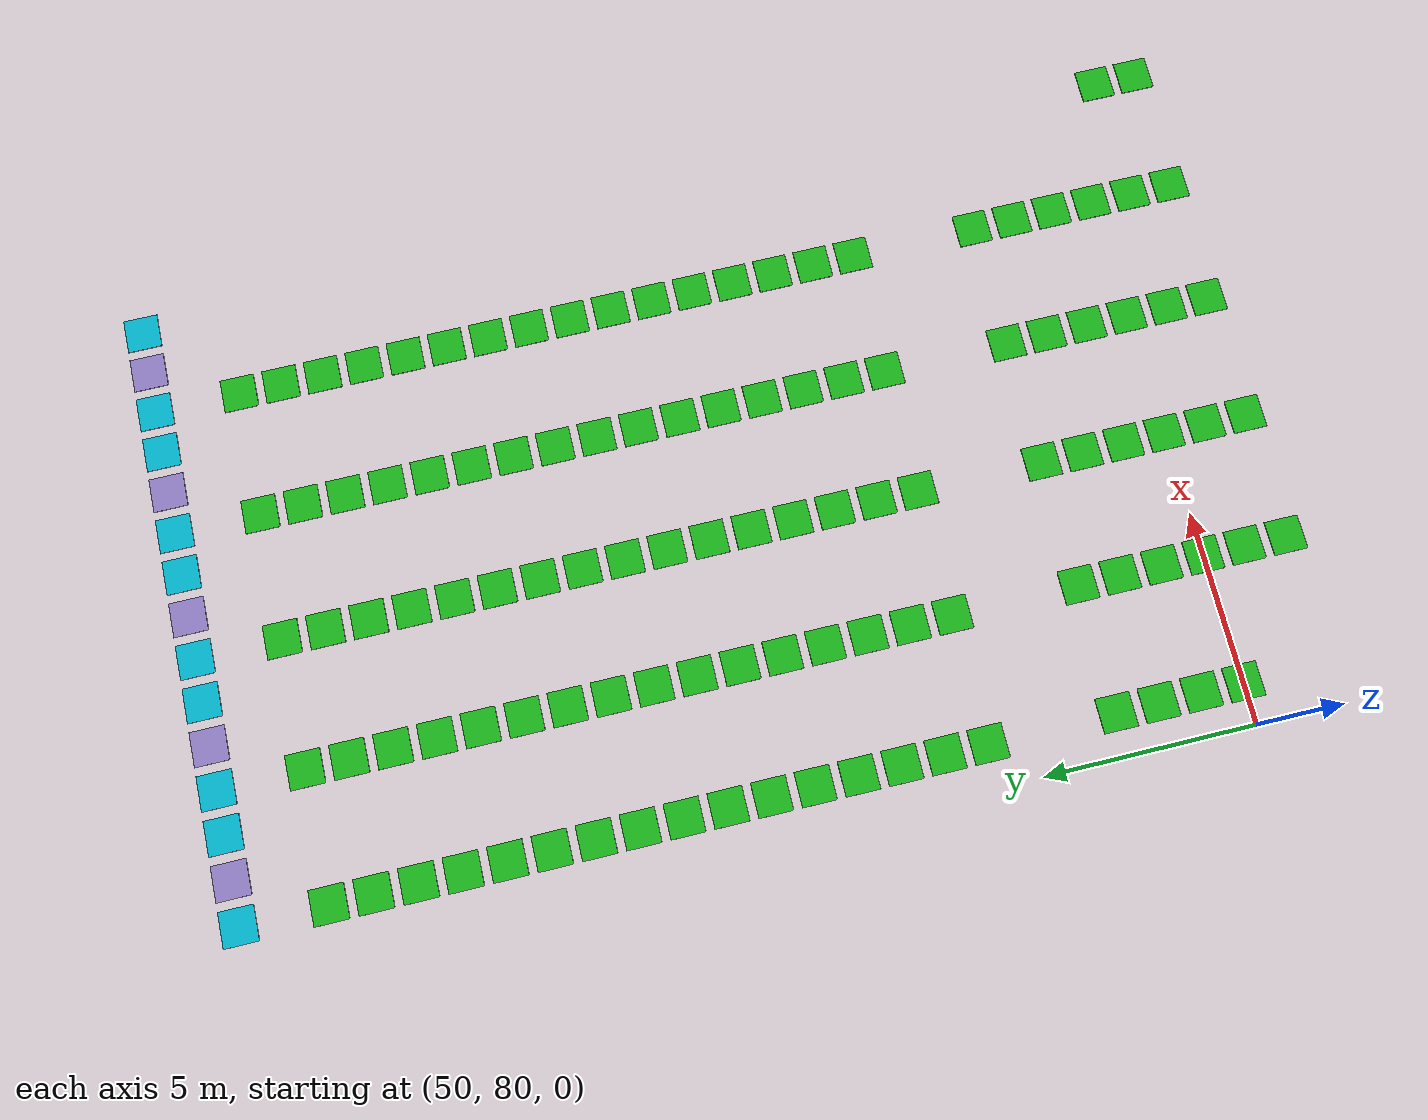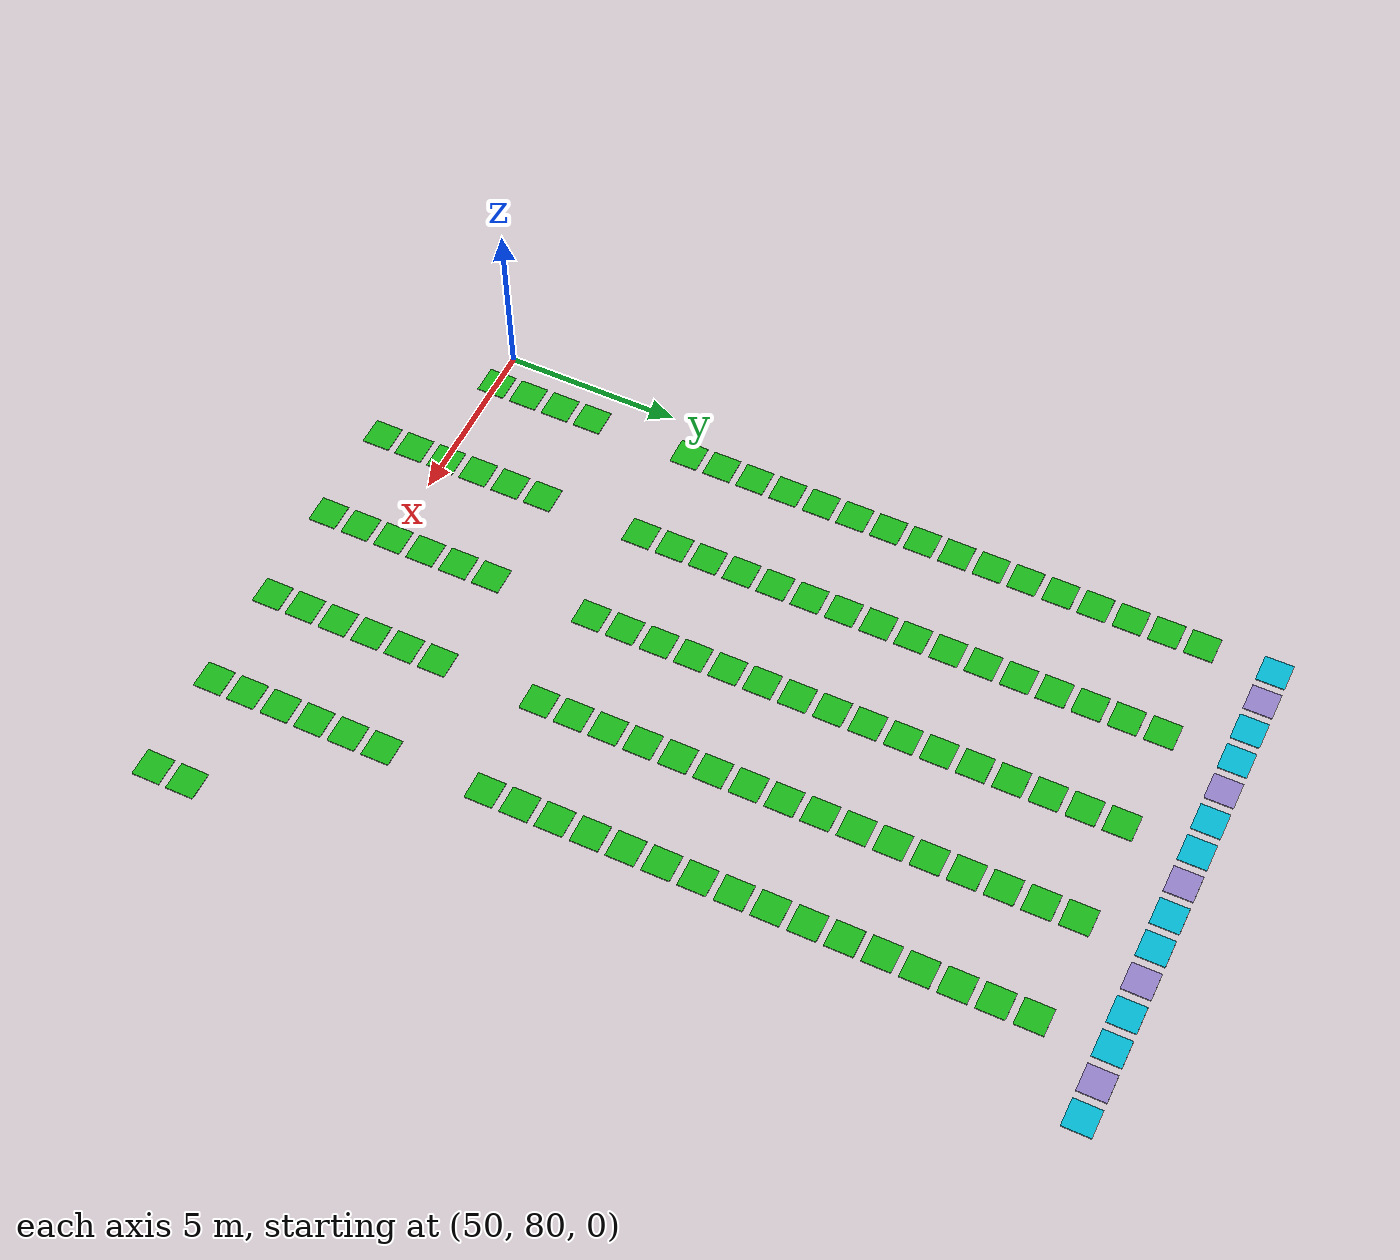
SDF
<sdf version="1.10">
 <world name="my_map">
  <model name="charging_034">
   <static>true</static>
   <pose>51.0
        103.0
        0.02
        0 0 0</pose>
   <link name="link">
    <visual name="visual">
     <geometry><box><size>0.8
                0.8
                0.02</size></box></geometry>
     <material><ambient>0.00 0.70 0.80 1</ambient><diffuse>0.00 0.70 0.80 1</diffuse></material>
    </visual>
   </link>
  </model>
  <model name="charge_queue_017">
   <static>true</static>
   <pose>52.0
        103.0
        0.02
        0 0 0</pose>
   <link name="link">
    <visual name="visual">
     <geometry><box><size>0.8
                0.8
                0.02</size></box></geometry>
     <material><ambient>0.56 0.49 0.76 1</ambient><diffuse>0.56 0.49 0.76 1</diffuse></material>
    </visual>
   </link>
  </model>
  <model name="charging_035">
   <static>true</static>
   <pose>53.0
        103.0
        0.02
        0 0 0</pose>
   <link name="link">
    <visual name="visual">
     <geometry><box><size>0.8
                0.8
                0.02</size></box></geometry>
     <material><ambient>0.00 0.70 0.80 1</ambient><diffuse>0.00 0.70 0.80 1</diffuse></material>
    </visual>
   </link>
  </model>
  <model name="charging_036">
   <static>true</static>
   <pose>54.0
        103.0
        0.02
        0 0 0</pose>
   <link name="link">
    <visual name="visual">
     <geometry><box><size>0.8
                0.8
                0.02</size></box></geometry>
     <material><ambient>0.00 0.70 0.80 1</ambient><diffuse>0.00 0.70 0.80 1</diffuse></material>
    </visual>
   </link>
  </model>
  <model name="charge_queue_018">
   <static>true</static>
   <pose>55.0
        103.0
        0.02
        0 0 0</pose>
   <link name="link">
    <visual name="visual">
     <geometry><box><size>0.8
                0.8
                0.02</size></box></geometry>
     <material><ambient>0.56 0.49 0.76 1</ambient><diffuse>0.56 0.49 0.76 1</diffuse></material>
    </visual>
   </link>
  </model>
  <model name="charging_037">
   <static>true</static>
   <pose>56.0
        103.0
        0.02
        0 0 0</pose>
   <link name="link">
    <visual name="visual">
     <geometry><box><size>0.8
                0.8
                0.02</size></box></geometry>
     <material><ambient>0.00 0.70 0.80 1</ambient><diffuse>0.00 0.70 0.80 1</diffuse></material>
    </visual>
   </link>
  </model>
  <model name="charging_038">
   <static>true</static>
   <pose>57.0
        103.0
        0.02
        0 0 0</pose>
   <link name="link">
    <visual name="visual">
     <geometry><box><size>0.8
                0.8
                0.02</size></box></geometry>
     <material><ambient>0.00 0.70 0.80 1</ambient><diffuse>0.00 0.70 0.80 1</diffuse></material>
    </visual>
   </link>
  </model>
  <model name="charge_queue_019">
   <static>true</static>
   <pose>58.0
        103.0
        0.02
        0 0 0</pose>
   <link name="link">
    <visual name="visual">
     <geometry><box><size>0.8
                0.8
                0.02</size></box></geometry>
     <material><ambient>0.56 0.49 0.76 1</ambient><diffuse>0.56 0.49 0.76 1</diffuse></material>
    </visual>
   </link>
  </model>
  <model name="charging_039">
   <static>true</static>
   <pose>59.0
        103.0
        0.02
        0 0 0</pose>
   <link name="link">
    <visual name="visual">
     <geometry><box><size>0.8
                0.8
                0.02</size></box></geometry>
     <material><ambient>0.00 0.70 0.80 1</ambient><diffuse>0.00 0.70 0.80 1</diffuse></material>
    </visual>
   </link>
  </model>
  <model name="charging_040">
   <static>true</static>
   <pose>60.0
        103.0
        0.02
        0 0 0</pose>
   <link name="link">
    <visual name="visual">
     <geometry><box><size>0.8
                0.8
                0.02</size></box></geometry>
     <material><ambient>0.00 0.70 0.80 1</ambient><diffuse>0.00 0.70 0.80 1</diffuse></material>
    </visual>
   </link>
  </model>
  <model name="charge_queue_020">
   <static>true</static>
   <pose>61.0
        103.0
        0.02
        0 0 0</pose>
   <link name="link">
    <visual name="visual">
     <geometry><box><size>0.8
                0.8
                0.02</size></box></geometry>
     <material><ambient>0.56 0.49 0.76 1</ambient><diffuse>0.56 0.49 0.76 1</diffuse></material>
    </visual>
   </link>
  </model>
  <model name="charging_041">
   <static>true</static>
   <pose>62.0
        103.0
        0.02
        0 0 0</pose>
   <link name="link">
    <visual name="visual">
     <geometry><box><size>0.8
                0.8
                0.02</size></box></geometry>
     <material><ambient>0.00 0.70 0.80 1</ambient><diffuse>0.00 0.70 0.80 1</diffuse></material>
    </visual>
   </link>
  </model>
  <model name="charging_042">
   <static>true</static>
   <pose>63.0
        103.0
        0.02
        0 0 0</pose>
   <link name="link">
    <visual name="visual">
     <geometry><box><size>0.8
                0.8
                0.02</size></box></geometry>
     <material><ambient>0.00 0.70 0.80 1</ambient><diffuse>0.00 0.70 0.80 1</diffuse></material>
    </visual>
   </link>
  </model>
  <model name="charge_queue_021">
   <static>true</static>
   <pose>64.0
        103.0
        0.02
        0 0 0</pose>
   <link name="link">
    <visual name="visual">
     <geometry><box><size>0.8
                0.8
                0.02</size></box></geometry>
     <material><ambient>0.56 0.49 0.76 1</ambient><diffuse>0.56 0.49 0.76 1</diffuse></material>
    </visual>
   </link>
  </model>
  <model name="charging_043">
   <static>true</static>
   <pose>65.0
        103.0
        0.02
        0 0 0</pose>
   <link name="link">
    <visual name="visual">
     <geometry><box><size>0.8
                0.8
                0.02</size></box></geometry>
     <material><ambient>0.00 0.70 0.80 1</ambient><diffuse>0.00 0.70 0.80 1</diffuse></material>
    </visual>
   </link>
  </model>
  <model name="shelf_017">
   <static>true</static>
   <pose>51.0
        101.0
        0.02
        0 0 0</pose>
   <link name="link">
    <visual name="visual">
     <geometry><box><size>0.8
                0.8
                0.02</size></box></geometry>
     <material><ambient>0.10 0.70 0.10 1</ambient><diffuse>0.10 0.70 0.10 1</diffuse></material>
    </visual>
   </link>
  </model>
  <model name="shelf_018">
   <static>true</static>
   <pose>54.0
        101.0
        0.02
        0 0 0</pose>
   <link name="link">
    <visual name="visual">
     <geometry><box><size>0.8
                0.8
                0.02</size></box></geometry>
     <material><ambient>0.10 0.70 0.10 1</ambient><diffuse>0.10 0.70 0.10 1</diffuse></material>
    </visual>
   </link>
  </model>
  <model name="shelf_019">
   <static>true</static>
   <pose>57.0
        101.0
        0.02
        0 0 0</pose>
   <link name="link">
    <visual name="visual">
     <geometry><box><size>0.8
                0.8
                0.02</size></box></geometry>
     <material><ambient>0.10 0.70 0.10 1</ambient><diffuse>0.10 0.70 0.10 1</diffuse></material>
    </visual>
   </link>
  </model>
  <model name="shelf_020">
   <static>true</static>
   <pose>60.0
        101.0
        0.02
        0 0 0</pose>
   <link name="link">
    <visual name="visual">
     <geometry><box><size>0.8
                0.8
                0.02</size></box></geometry>
     <material><ambient>0.10 0.70 0.10 1</ambient><diffuse>0.10 0.70 0.10 1</diffuse></material>
    </visual>
   </link>
  </model>
  <model name="shelf_021">
   <static>true</static>
   <pose>63.0
        101.0
        0.02
        0 0 0</pose>
   <link name="link">
    <visual name="visual">
     <geometry><box><size>0.8
                0.8
                0.02</size></box></geometry>
     <material><ambient>0.10 0.70 0.10 1</ambient><diffuse>0.10 0.70 0.10 1</diffuse></material>
    </visual>
   </link>
  </model>
  <model name="shelf_042">
   <static>true</static>
   <pose>51.0
        100.0
        0.02
        0 0 0</pose>
   <link name="link">
    <visual name="visual">
     <geometry><box><size>0.8
                0.8
                0.02</size></box></geometry>
     <material><ambient>0.10 0.70 0.10 1</ambient><diffuse>0.10 0.70 0.10 1</diffuse></material>
    </visual>
   </link>
  </model>
  <model name="shelf_043">
   <static>true</static>
   <pose>54.0
        100.0
        0.02
        0 0 0</pose>
   <link name="link">
    <visual name="visual">
     <geometry><box><size>0.8
                0.8
                0.02</size></box></geometry>
     <material><ambient>0.10 0.70 0.10 1</ambient><diffuse>0.10 0.70 0.10 1</diffuse></material>
    </visual>
   </link>
  </model>
  <model name="shelf_044">
   <static>true</static>
   <pose>57.0
        100.0
        0.02
        0 0 0</pose>
   <link name="link">
    <visual name="visual">
     <geometry><box><size>0.8
                0.8
                0.02</size></box></geometry>
     <material><ambient>0.10 0.70 0.10 1</ambient><diffuse>0.10 0.70 0.10 1</diffuse></material>
    </visual>
   </link>
  </model>
  <model name="shelf_045">
   <static>true</static>
   <pose>60.0
        100.0
        0.02
        0 0 0</pose>
   <link name="link">
    <visual name="visual">
     <geometry><box><size>0.8
                0.8
                0.02</size></box></geometry>
     <material><ambient>0.10 0.70 0.10 1</ambient><diffuse>0.10 0.70 0.10 1</diffuse></material>
    </visual>
   </link>
  </model>
  <model name="shelf_046">
   <static>true</static>
   <pose>63.0
        100.0
        0.02
        0 0 0</pose>
   <link name="link">
    <visual name="visual">
     <geometry><box><size>0.8
                0.8
                0.02</size></box></geometry>
     <material><ambient>0.10 0.70 0.10 1</ambient><diffuse>0.10 0.70 0.10 1</diffuse></material>
    </visual>
   </link>
  </model>
  <model name="shelf_067">
   <static>true</static>
   <pose>51.0
        99.0
        0.02
        0 0 0</pose>
   <link name="link">
    <visual name="visual">
     <geometry><box><size>0.8
                0.8
                0.02</size></box></geometry>
     <material><ambient>0.10 0.70 0.10 1</ambient><diffuse>0.10 0.70 0.10 1</diffuse></material>
    </visual>
   </link>
  </model>
  <model name="shelf_068">
   <static>true</static>
   <pose>54.0
        99.0
        0.02
        0 0 0</pose>
   <link name="link">
    <visual name="visual">
     <geometry><box><size>0.8
                0.8
                0.02</size></box></geometry>
     <material><ambient>0.10 0.70 0.10 1</ambient><diffuse>0.10 0.70 0.10 1</diffuse></material>
    </visual>
   </link>
  </model>
  <model name="shelf_069">
   <static>true</static>
   <pose>57.0
        99.0
        0.02
        0 0 0</pose>
   <link name="link">
    <visual name="visual">
     <geometry><box><size>0.8
                0.8
                0.02</size></box></geometry>
     <material><ambient>0.10 0.70 0.10 1</ambient><diffuse>0.10 0.70 0.10 1</diffuse></material>
    </visual>
   </link>
  </model>
  <model name="shelf_070">
   <static>true</static>
   <pose>60.0
        99.0
        0.02
        0 0 0</pose>
   <link name="link">
    <visual name="visual">
     <geometry><box><size>0.8
                0.8
                0.02</size></box></geometry>
     <material><ambient>0.10 0.70 0.10 1</ambient><diffuse>0.10 0.70 0.10 1</diffuse></material>
    </visual>
   </link>
  </model>
  <model name="shelf_071">
   <static>true</static>
   <pose>63.0
        99.0
        0.02
        0 0 0</pose>
   <link name="link">
    <visual name="visual">
     <geometry><box><size>0.8
                0.8
                0.02</size></box></geometry>
     <material><ambient>0.10 0.70 0.10 1</ambient><diffuse>0.10 0.70 0.10 1</diffuse></material>
    </visual>
   </link>
  </model>
  <model name="shelf_092">
   <static>true</static>
   <pose>51.0
        98.0
        0.02
        0 0 0</pose>
   <link name="link">
    <visual name="visual">
     <geometry><box><size>0.8
                0.8
                0.02</size></box></geometry>
     <material><ambient>0.10 0.70 0.10 1</ambient><diffuse>0.10 0.70 0.10 1</diffuse></material>
    </visual>
   </link>
  </model>
  <model name="shelf_093">
   <static>true</static>
   <pose>54.0
        98.0
        0.02
        0 0 0</pose>
   <link name="link">
    <visual name="visual">
     <geometry><box><size>0.8
                0.8
                0.02</size></box></geometry>
     <material><ambient>0.10 0.70 0.10 1</ambient><diffuse>0.10 0.70 0.10 1</diffuse></material>
    </visual>
   </link>
  </model>
  <model name="shelf_094">
   <static>true</static>
   <pose>57.0
        98.0
        0.02
        0 0 0</pose>
   <link name="link">
    <visual name="visual">
     <geometry><box><size>0.8
                0.8
                0.02</size></box></geometry>
     <material><ambient>0.10 0.70 0.10 1</ambient><diffuse>0.10 0.70 0.10 1</diffuse></material>
    </visual>
   </link>
  </model>
  <model name="shelf_095">
   <static>true</static>
   <pose>60.0
        98.0
        0.02
        0 0 0</pose>
   <link name="link">
    <visual name="visual">
     <geometry><box><size>0.8
                0.8
                0.02</size></box></geometry>
     <material><ambient>0.10 0.70 0.10 1</ambient><diffuse>0.10 0.70 0.10 1</diffuse></material>
    </visual>
   </link>
  </model>
  <model name="shelf_096">
   <static>true</static>
   <pose>63.0
        98.0
        0.02
        0 0 0</pose>
   <link name="link">
    <visual name="visual">
     <geometry><box><size>0.8
                0.8
                0.02</size></box></geometry>
     <material><ambient>0.10 0.70 0.10 1</ambient><diffuse>0.10 0.70 0.10 1</diffuse></material>
    </visual>
   </link>
  </model>
  <model name="shelf_117">
   <static>true</static>
   <pose>51.0
        97.0
        0.02
        0 0 0</pose>
   <link name="link">
    <visual name="visual">
     <geometry><box><size>0.8
                0.8
                0.02</size></box></geometry>
     <material><ambient>0.10 0.70 0.10 1</ambient><diffuse>0.10 0.70 0.10 1</diffuse></material>
    </visual>
   </link>
  </model>
  <model name="shelf_118">
   <static>true</static>
   <pose>54.0
        97.0
        0.02
        0 0 0</pose>
   <link name="link">
    <visual name="visual">
     <geometry><box><size>0.8
                0.8
                0.02</size></box></geometry>
     <material><ambient>0.10 0.70 0.10 1</ambient><diffuse>0.10 0.70 0.10 1</diffuse></material>
    </visual>
   </link>
  </model>
  <model name="shelf_119">
   <static>true</static>
   <pose>57.0
        97.0
        0.02
        0 0 0</pose>
   <link name="link">
    <visual name="visual">
     <geometry><box><size>0.8
                0.8
                0.02</size></box></geometry>
     <material><ambient>0.10 0.70 0.10 1</ambient><diffuse>0.10 0.70 0.10 1</diffuse></material>
    </visual>
   </link>
  </model>
  <model name="shelf_120">
   <static>true</static>
   <pose>60.0
        97.0
        0.02
        0 0 0</pose>
   <link name="link">
    <visual name="visual">
     <geometry><box><size>0.8
                0.8
                0.02</size></box></geometry>
     <material><ambient>0.10 0.70 0.10 1</ambient><diffuse>0.10 0.70 0.10 1</diffuse></material>
    </visual>
   </link>
  </model>
  <model name="shelf_121">
   <static>true</static>
   <pose>63.0
        97.0
        0.02
        0 0 0</pose>
   <link name="link">
    <visual name="visual">
     <geometry><box><size>0.8
                0.8
                0.02</size></box></geometry>
     <material><ambient>0.10 0.70 0.10 1</ambient><diffuse>0.10 0.70 0.10 1</diffuse></material>
    </visual>
   </link>
  </model>
  <model name="shelf_142">
   <static>true</static>
   <pose>51.0
        96.0
        0.02
        0 0 0</pose>
   <link name="link">
    <visual name="visual">
     <geometry><box><size>0.8
                0.8
                0.02</size></box></geometry>
     <material><ambient>0.10 0.70 0.10 1</ambient><diffuse>0.10 0.70 0.10 1</diffuse></material>
    </visual>
   </link>
  </model>
  <model name="shelf_143">
   <static>true</static>
   <pose>54.0
        96.0
        0.02
        0 0 0</pose>
   <link name="link">
    <visual name="visual">
     <geometry><box><size>0.8
                0.8
                0.02</size></box></geometry>
     <material><ambient>0.10 0.70 0.10 1</ambient><diffuse>0.10 0.70 0.10 1</diffuse></material>
    </visual>
   </link>
  </model>
  <model name="shelf_144">
   <static>true</static>
   <pose>57.0
        96.0
        0.02
        0 0 0</pose>
   <link name="link">
    <visual name="visual">
     <geometry><box><size>0.8
                0.8
                0.02</size></box></geometry>
     <material><ambient>0.10 0.70 0.10 1</ambient><diffuse>0.10 0.70 0.10 1</diffuse></material>
    </visual>
   </link>
  </model>
  <model name="shelf_145">
   <static>true</static>
   <pose>60.0
        96.0
        0.02
        0 0 0</pose>
   <link name="link">
    <visual name="visual">
     <geometry><box><size>0.8
                0.8
                0.02</size></box></geometry>
     <material><ambient>0.10 0.70 0.10 1</ambient><diffuse>0.10 0.70 0.10 1</diffuse></material>
    </visual>
   </link>
  </model>
  <model name="shelf_146">
   <static>true</static>
   <pose>63.0
        96.0
        0.02
        0 0 0</pose>
   <link name="link">
    <visual name="visual">
     <geometry><box><size>0.8
                0.8
                0.02</size></box></geometry>
     <material><ambient>0.10 0.70 0.10 1</ambient><diffuse>0.10 0.70 0.10 1</diffuse></material>
    </visual>
   </link>
  </model>
  <model name="shelf_167">
   <static>true</static>
   <pose>51.0
        95.0
        0.02
        0 0 0</pose>
   <link name="link">
    <visual name="visual">
     <geometry><box><size>0.8
                0.8
                0.02</size></box></geometry>
     <material><ambient>0.10 0.70 0.10 1</ambient><diffuse>0.10 0.70 0.10 1</diffuse></material>
    </visual>
   </link>
  </model>
  <model name="shelf_168">
   <static>true</static>
   <pose>54.0
        95.0
        0.02
        0 0 0</pose>
   <link name="link">
    <visual name="visual">
     <geometry><box><size>0.8
                0.8
                0.02</size></box></geometry>
     <material><ambient>0.10 0.70 0.10 1</ambient><diffuse>0.10 0.70 0.10 1</diffuse></material>
    </visual>
   </link>
  </model>
  <model name="shelf_169">
   <static>true</static>
   <pose>57.0
        95.0
        0.02
        0 0 0</pose>
   <link name="link">
    <visual name="visual">
     <geometry><box><size>0.8
                0.8
                0.02</size></box></geometry>
     <material><ambient>0.10 0.70 0.10 1</ambient><diffuse>0.10 0.70 0.10 1</diffuse></material>
    </visual>
   </link>
  </model>
  <model name="shelf_170">
   <static>true</static>
   <pose>60.0
        95.0
        0.02
        0 0 0</pose>
   <link name="link">
    <visual name="visual">
     <geometry><box><size>0.8
                0.8
                0.02</size></box></geometry>
     <material><ambient>0.10 0.70 0.10 1</ambient><diffuse>0.10 0.70 0.10 1</diffuse></material>
    </visual>
   </link>
  </model>
  <model name="shelf_171">
   <static>true</static>
   <pose>63.0
        95.0
        0.02
        0 0 0</pose>
   <link name="link">
    <visual name="visual">
     <geometry><box><size>0.8
                0.8
                0.02</size></box></geometry>
     <material><ambient>0.10 0.70 0.10 1</ambient><diffuse>0.10 0.70 0.10 1</diffuse></material>
    </visual>
   </link>
  </model>
  <model name="shelf_192">
   <static>true</static>
   <pose>51.0
        94.0
        0.02
        0 0 0</pose>
   <link name="link">
    <visual name="visual">
     <geometry><box><size>0.8
                0.8
                0.02</size></box></geometry>
     <material><ambient>0.10 0.70 0.10 1</ambient><diffuse>0.10 0.70 0.10 1</diffuse></material>
    </visual>
   </link>
  </model>
  <model name="shelf_193">
   <static>true</static>
   <pose>54.0
        94.0
        0.02
        0 0 0</pose>
   <link name="link">
    <visual name="visual">
     <geometry><box><size>0.8
                0.8
                0.02</size></box></geometry>
     <material><ambient>0.10 0.70 0.10 1</ambient><diffuse>0.10 0.70 0.10 1</diffuse></material>
    </visual>
   </link>
  </model>
  <model name="shelf_194">
   <static>true</static>
   <pose>57.0
        94.0
        0.02
        0 0 0</pose>
   <link name="link">
    <visual name="visual">
     <geometry><box><size>0.8
                0.8
                0.02</size></box></geometry>
     <material><ambient>0.10 0.70 0.10 1</ambient><diffuse>0.10 0.70 0.10 1</diffuse></material>
    </visual>
   </link>
  </model>
  <model name="shelf_195">
   <static>true</static>
   <pose>60.0
        94.0
        0.02
        0 0 0</pose>
   <link name="link">
    <visual name="visual">
     <geometry><box><size>0.8
                0.8
                0.02</size></box></geometry>
     <material><ambient>0.10 0.70 0.10 1</ambient><diffuse>0.10 0.70 0.10 1</diffuse></material>
    </visual>
   </link>
  </model>
  <model name="shelf_196">
   <static>true</static>
   <pose>63.0
        94.0
        0.02
        0 0 0</pose>
   <link name="link">
    <visual name="visual">
     <geometry><box><size>0.8
                0.8
                0.02</size></box></geometry>
     <material><ambient>0.10 0.70 0.10 1</ambient><diffuse>0.10 0.70 0.10 1</diffuse></material>
    </visual>
   </link>
  </model>
  <model name="shelf_217">
   <static>true</static>
   <pose>51.0
        93.0
        0.02
        0 0 0</pose>
   <link name="link">
    <visual name="visual">
     <geometry><box><size>0.8
                0.8
                0.02</size></box></geometry>
     <material><ambient>0.10 0.70 0.10 1</ambient><diffuse>0.10 0.70 0.10 1</diffuse></material>
    </visual>
   </link>
  </model>
  <model name="shelf_218">
   <static>true</static>
   <pose>54.0
        93.0
        0.02
        0 0 0</pose>
   <link name="link">
    <visual name="visual">
     <geometry><box><size>0.8
                0.8
                0.02</size></box></geometry>
     <material><ambient>0.10 0.70 0.10 1</ambient><diffuse>0.10 0.70 0.10 1</diffuse></material>
    </visual>
   </link>
  </model>
  <model name="shelf_219">
   <static>true</static>
   <pose>57.0
        93.0
        0.02
        0 0 0</pose>
   <link name="link">
    <visual name="visual">
     <geometry><box><size>0.8
                0.8
                0.02</size></box></geometry>
     <material><ambient>0.10 0.70 0.10 1</ambient><diffuse>0.10 0.70 0.10 1</diffuse></material>
    </visual>
   </link>
  </model>
  <model name="shelf_220">
   <static>true</static>
   <pose>60.0
        93.0
        0.02
        0 0 0</pose>
   <link name="link">
    <visual name="visual">
     <geometry><box><size>0.8
                0.8
                0.02</size></box></geometry>
     <material><ambient>0.10 0.70 0.10 1</ambient><diffuse>0.10 0.70 0.10 1</diffuse></material>
    </visual>
   </link>
  </model>
  <model name="shelf_221">
   <static>true</static>
   <pose>63.0
        93.0
        0.02
        0 0 0</pose>
   <link name="link">
    <visual name="visual">
     <geometry><box><size>0.8
                0.8
                0.02</size></box></geometry>
     <material><ambient>0.10 0.70 0.10 1</ambient><diffuse>0.10 0.70 0.10 1</diffuse></material>
    </visual>
   </link>
  </model>
  <model name="shelf_242">
   <static>true</static>
   <pose>51.0
        92.0
        0.02
        0 0 0</pose>
   <link name="link">
    <visual name="visual">
     <geometry><box><size>0.8
                0.8
                0.02</size></box></geometry>
     <material><ambient>0.10 0.70 0.10 1</ambient><diffuse>0.10 0.70 0.10 1</diffuse></material>
    </visual>
   </link>
  </model>
  <model name="shelf_243">
   <static>true</static>
   <pose>54.0
        92.0
        0.02
        0 0 0</pose>
   <link name="link">
    <visual name="visual">
     <geometry><box><size>0.8
                0.8
                0.02</size></box></geometry>
     <material><ambient>0.10 0.70 0.10 1</ambient><diffuse>0.10 0.70 0.10 1</diffuse></material>
    </visual>
   </link>
  </model>
  <model name="shelf_244">
   <static>true</static>
   <pose>57.0
        92.0
        0.02
        0 0 0</pose>
   <link name="link">
    <visual name="visual">
     <geometry><box><size>0.8
                0.8
                0.02</size></box></geometry>
     <material><ambient>0.10 0.70 0.10 1</ambient><diffuse>0.10 0.70 0.10 1</diffuse></material>
    </visual>
   </link>
  </model>
  <model name="shelf_245">
   <static>true</static>
   <pose>60.0
        92.0
        0.02
        0 0 0</pose>
   <link name="link">
    <visual name="visual">
     <geometry><box><size>0.8
                0.8
                0.02</size></box></geometry>
     <material><ambient>0.10 0.70 0.10 1</ambient><diffuse>0.10 0.70 0.10 1</diffuse></material>
    </visual>
   </link>
  </model>
  <model name="shelf_246">
   <static>true</static>
   <pose>63.0
        92.0
        0.02
        0 0 0</pose>
   <link name="link">
    <visual name="visual">
     <geometry><box><size>0.8
                0.8
                0.02</size></box></geometry>
     <material><ambient>0.10 0.70 0.10 1</ambient><diffuse>0.10 0.70 0.10 1</diffuse></material>
    </visual>
   </link>
  </model>
  <model name="shelf_267">
   <static>true</static>
   <pose>51.0
        91.0
        0.02
        0 0 0</pose>
   <link name="link">
    <visual name="visual">
     <geometry><box><size>0.8
                0.8
                0.02</size></box></geometry>
     <material><ambient>0.10 0.70 0.10 1</ambient><diffuse>0.10 0.70 0.10 1</diffuse></material>
    </visual>
   </link>
  </model>
  <model name="shelf_268">
   <static>true</static>
   <pose>54.0
        91.0
        0.02
        0 0 0</pose>
   <link name="link">
    <visual name="visual">
     <geometry><box><size>0.8
                0.8
                0.02</size></box></geometry>
     <material><ambient>0.10 0.70 0.10 1</ambient><diffuse>0.10 0.70 0.10 1</diffuse></material>
    </visual>
   </link>
  </model>
  <model name="shelf_269">
   <static>true</static>
   <pose>57.0
        91.0
        0.02
        0 0 0</pose>
   <link name="link">
    <visual name="visual">
     <geometry><box><size>0.8
                0.8
                0.02</size></box></geometry>
     <material><ambient>0.10 0.70 0.10 1</ambient><diffuse>0.10 0.70 0.10 1</diffuse></material>
    </visual>
   </link>
  </model>
  <model name="shelf_270">
   <static>true</static>
   <pose>60.0
        91.0
        0.02
        0 0 0</pose>
   <link name="link">
    <visual name="visual">
     <geometry><box><size>0.8
                0.8
                0.02</size></box></geometry>
     <material><ambient>0.10 0.70 0.10 1</ambient><diffuse>0.10 0.70 0.10 1</diffuse></material>
    </visual>
   </link>
  </model>
  <model name="shelf_271">
   <static>true</static>
   <pose>63.0
        91.0
        0.02
        0 0 0</pose>
   <link name="link">
    <visual name="visual">
     <geometry><box><size>0.8
                0.8
                0.02</size></box></geometry>
     <material><ambient>0.10 0.70 0.10 1</ambient><diffuse>0.10 0.70 0.10 1</diffuse></material>
    </visual>
   </link>
  </model>
  <model name="shelf_292">
   <static>true</static>
   <pose>51.0
        90.0
        0.02
        0 0 0</pose>
   <link name="link">
    <visual name="visual">
     <geometry><box><size>0.8
                0.8
                0.02</size></box></geometry>
     <material><ambient>0.10 0.70 0.10 1</ambient><diffuse>0.10 0.70 0.10 1</diffuse></material>
    </visual>
   </link>
  </model>
  <model name="shelf_293">
   <static>true</static>
   <pose>54.0
        90.0
        0.02
        0 0 0</pose>
   <link name="link">
    <visual name="visual">
     <geometry><box><size>0.8
                0.8
                0.02</size></box></geometry>
     <material><ambient>0.10 0.70 0.10 1</ambient><diffuse>0.10 0.70 0.10 1</diffuse></material>
    </visual>
   </link>
  </model>
  <model name="shelf_294">
   <static>true</static>
   <pose>57.0
        90.0
        0.02
        0 0 0</pose>
   <link name="link">
    <visual name="visual">
     <geometry><box><size>0.8
                0.8
                0.02</size></box></geometry>
     <material><ambient>0.10 0.70 0.10 1</ambient><diffuse>0.10 0.70 0.10 1</diffuse></material>
    </visual>
   </link>
  </model>
  <model name="shelf_295">
   <static>true</static>
   <pose>60.0
        90.0
        0.02
        0 0 0</pose>
   <link name="link">
    <visual name="visual">
     <geometry><box><size>0.8
                0.8
                0.02</size></box></geometry>
     <material><ambient>0.10 0.70 0.10 1</ambient><diffuse>0.10 0.70 0.10 1</diffuse></material>
    </visual>
   </link>
  </model>
  <model name="shelf_296">
   <static>true</static>
   <pose>63.0
        90.0
        0.02
        0 0 0</pose>
   <link name="link">
    <visual name="visual">
     <geometry><box><size>0.8
                0.8
                0.02</size></box></geometry>
     <material><ambient>0.10 0.70 0.10 1</ambient><diffuse>0.10 0.70 0.10 1</diffuse></material>
    </visual>
   </link>
  </model>
  <model name="shelf_317">
   <static>true</static>
   <pose>51.0
        89.0
        0.02
        0 0 0</pose>
   <link name="link">
    <visual name="visual">
     <geometry><box><size>0.8
                0.8
                0.02</size></box></geometry>
     <material><ambient>0.10 0.70 0.10 1</ambient><diffuse>0.10 0.70 0.10 1</diffuse></material>
    </visual>
   </link>
  </model>
  <model name="shelf_318">
   <static>true</static>
   <pose>54.0
        89.0
        0.02
        0 0 0</pose>
   <link name="link">
    <visual name="visual">
     <geometry><box><size>0.8
                0.8
                0.02</size></box></geometry>
     <material><ambient>0.10 0.70 0.10 1</ambient><diffuse>0.10 0.70 0.10 1</diffuse></material>
    </visual>
   </link>
  </model>
  <model name="shelf_319">
   <static>true</static>
   <pose>57.0
        89.0
        0.02
        0 0 0</pose>
   <link name="link">
    <visual name="visual">
     <geometry><box><size>0.8
                0.8
                0.02</size></box></geometry>
     <material><ambient>0.10 0.70 0.10 1</ambient><diffuse>0.10 0.70 0.10 1</diffuse></material>
    </visual>
   </link>
  </model>
  <model name="shelf_320">
   <static>true</static>
   <pose>60.0
        89.0
        0.02
        0 0 0</pose>
   <link name="link">
    <visual name="visual">
     <geometry><box><size>0.8
                0.8
                0.02</size></box></geometry>
     <material><ambient>0.10 0.70 0.10 1</ambient><diffuse>0.10 0.70 0.10 1</diffuse></material>
    </visual>
   </link>
  </model>
  <model name="shelf_321">
   <static>true</static>
   <pose>63.0
        89.0
        0.02
        0 0 0</pose>
   <link name="link">
    <visual name="visual">
     <geometry><box><size>0.8
                0.8
                0.02</size></box></geometry>
     <material><ambient>0.10 0.70 0.10 1</ambient><diffuse>0.10 0.70 0.10 1</diffuse></material>
    </visual>
   </link>
  </model>
  <model name="shelf_342">
   <static>true</static>
   <pose>51.0
        88.0
        0.02
        0 0 0</pose>
   <link name="link">
    <visual name="visual">
     <geometry><box><size>0.8
                0.8
                0.02</size></box></geometry>
     <material><ambient>0.10 0.70 0.10 1</ambient><diffuse>0.10 0.70 0.10 1</diffuse></material>
    </visual>
   </link>
  </model>
  <model name="shelf_343">
   <static>true</static>
   <pose>54.0
        88.0
        0.02
        0 0 0</pose>
   <link name="link">
    <visual name="visual">
     <geometry><box><size>0.8
                0.8
                0.02</size></box></geometry>
     <material><ambient>0.10 0.70 0.10 1</ambient><diffuse>0.10 0.70 0.10 1</diffuse></material>
    </visual>
   </link>
  </model>
  <model name="shelf_344">
   <static>true</static>
   <pose>57.0
        88.0
        0.02
        0 0 0</pose>
   <link name="link">
    <visual name="visual">
     <geometry><box><size>0.8
                0.8
                0.02</size></box></geometry>
     <material><ambient>0.10 0.70 0.10 1</ambient><diffuse>0.10 0.70 0.10 1</diffuse></material>
    </visual>
   </link>
  </model>
  <model name="shelf_345">
   <static>true</static>
   <pose>60.0
        88.0
        0.02
        0 0 0</pose>
   <link name="link">
    <visual name="visual">
     <geometry><box><size>0.8
                0.8
                0.02</size></box></geometry>
     <material><ambient>0.10 0.70 0.10 1</ambient><diffuse>0.10 0.70 0.10 1</diffuse></material>
    </visual>
   </link>
  </model>
  <model name="shelf_346">
   <static>true</static>
   <pose>63.0
        88.0
        0.02
        0 0 0</pose>
   <link name="link">
    <visual name="visual">
     <geometry><box><size>0.8
                0.8
                0.02</size></box></geometry>
     <material><ambient>0.10 0.70 0.10 1</ambient><diffuse>0.10 0.70 0.10 1</diffuse></material>
    </visual>
   </link>
  </model>
  <model name="shelf_367">
   <static>true</static>
   <pose>51.0
        87.0
        0.02
        0 0 0</pose>
   <link name="link">
    <visual name="visual">
     <geometry><box><size>0.8
                0.8
                0.02</size></box></geometry>
     <material><ambient>0.10 0.70 0.10 1</ambient><diffuse>0.10 0.70 0.10 1</diffuse></material>
    </visual>
   </link>
  </model>
  <model name="shelf_368">
   <static>true</static>
   <pose>54.0
        87.0
        0.02
        0 0 0</pose>
   <link name="link">
    <visual name="visual">
     <geometry><box><size>0.8
                0.8
                0.02</size></box></geometry>
     <material><ambient>0.10 0.70 0.10 1</ambient><diffuse>0.10 0.70 0.10 1</diffuse></material>
    </visual>
   </link>
  </model>
  <model name="shelf_369">
   <static>true</static>
   <pose>57.0
        87.0
        0.02
        0 0 0</pose>
   <link name="link">
    <visual name="visual">
     <geometry><box><size>0.8
                0.8
                0.02</size></box></geometry>
     <material><ambient>0.10 0.70 0.10 1</ambient><diffuse>0.10 0.70 0.10 1</diffuse></material>
    </visual>
   </link>
  </model>
  <model name="shelf_370">
   <static>true</static>
   <pose>60.0
        87.0
        0.02
        0 0 0</pose>
   <link name="link">
    <visual name="visual">
     <geometry><box><size>0.8
                0.8
                0.02</size></box></geometry>
     <material><ambient>0.10 0.70 0.10 1</ambient><diffuse>0.10 0.70 0.10 1</diffuse></material>
    </visual>
   </link>
  </model>
  <model name="shelf_371">
   <static>true</static>
   <pose>63.0
        87.0
        0.02
        0 0 0</pose>
   <link name="link">
    <visual name="visual">
     <geometry><box><size>0.8
                0.8
                0.02</size></box></geometry>
     <material><ambient>0.10 0.70 0.10 1</ambient><diffuse>0.10 0.70 0.10 1</diffuse></material>
    </visual>
   </link>
  </model>
  <model name="shelf_392">
   <static>true</static>
   <pose>51.0
        86.0
        0.02
        0 0 0</pose>
   <link name="link">
    <visual name="visual">
     <geometry><box><size>0.8
                0.8
                0.02</size></box></geometry>
     <material><ambient>0.10 0.70 0.10 1</ambient><diffuse>0.10 0.70 0.10 1</diffuse></material>
    </visual>
   </link>
  </model>
  <model name="shelf_393">
   <static>true</static>
   <pose>54.0
        86.0
        0.02
        0 0 0</pose>
   <link name="link">
    <visual name="visual">
     <geometry><box><size>0.8
                0.8
                0.02</size></box></geometry>
     <material><ambient>0.10 0.70 0.10 1</ambient><diffuse>0.10 0.70 0.10 1</diffuse></material>
    </visual>
   </link>
  </model>
  <model name="shelf_394">
   <static>true</static>
   <pose>57.0
        86.0
        0.02
        0 0 0</pose>
   <link name="link">
    <visual name="visual">
     <geometry><box><size>0.8
                0.8
                0.02</size></box></geometry>
     <material><ambient>0.10 0.70 0.10 1</ambient><diffuse>0.10 0.70 0.10 1</diffuse></material>
    </visual>
   </link>
  </model>
  <model name="shelf_395">
   <static>true</static>
   <pose>60.0
        86.0
        0.02
        0 0 0</pose>
   <link name="link">
    <visual name="visual">
     <geometry><box><size>0.8
                0.8
                0.02</size></box></geometry>
     <material><ambient>0.10 0.70 0.10 1</ambient><diffuse>0.10 0.70 0.10 1</diffuse></material>
    </visual>
   </link>
  </model>
  <model name="shelf_396">
   <static>true</static>
   <pose>63.0
        86.0
        0.02
        0 0 0</pose>
   <link name="link">
    <visual name="visual">
     <geometry><box><size>0.8
                0.8
                0.02</size></box></geometry>
     <material><ambient>0.10 0.70 0.10 1</ambient><diffuse>0.10 0.70 0.10 1</diffuse></material>
    </visual>
   </link>
  </model>
  <model name="shelf_417">
   <static>true</static>
   <pose>51.0
        83.0
        0.02
        0 0 0</pose>
   <link name="link">
    <visual name="visual">
     <geometry><box><size>0.8
                0.8
                0.02</size></box></geometry>
     <material><ambient>0.10 0.70 0.10 1</ambient><diffuse>0.10 0.70 0.10 1</diffuse></material>
    </visual>
   </link>
  </model>
  <model name="shelf_418">
   <static>true</static>
   <pose>54.0
        83.0
        0.02
        0 0 0</pose>
   <link name="link">
    <visual name="visual">
     <geometry><box><size>0.8
                0.8
                0.02</size></box></geometry>
     <material><ambient>0.10 0.70 0.10 1</ambient><diffuse>0.10 0.70 0.10 1</diffuse></material>
    </visual>
   </link>
  </model>
  <model name="shelf_419">
   <static>true</static>
   <pose>57.0
        83.0
        0.02
        0 0 0</pose>
   <link name="link">
    <visual name="visual">
     <geometry><box><size>0.8
                0.8
                0.02</size></box></geometry>
     <material><ambient>0.10 0.70 0.10 1</ambient><diffuse>0.10 0.70 0.10 1</diffuse></material>
    </visual>
   </link>
  </model>
  <model name="shelf_420">
   <static>true</static>
   <pose>60.0
        83.0
        0.02
        0 0 0</pose>
   <link name="link">
    <visual name="visual">
     <geometry><box><size>0.8
                0.8
                0.02</size></box></geometry>
     <material><ambient>0.10 0.70 0.10 1</ambient><diffuse>0.10 0.70 0.10 1</diffuse></material>
    </visual>
   </link>
  </model>
  <model name="shelf_421">
   <static>true</static>
   <pose>63.0
        83.0
        0.02
        0 0 0</pose>
   <link name="link">
    <visual name="visual">
     <geometry><box><size>0.8
                0.8
                0.02</size></box></geometry>
     <material><ambient>0.10 0.70 0.10 1</ambient><diffuse>0.10 0.70 0.10 1</diffuse></material>
    </visual>
   </link>
  </model>
  <model name="shelf_442">
   <static>true</static>
   <pose>51.0
        82.0
        0.02
        0 0 0</pose>
   <link name="link">
    <visual name="visual">
     <geometry><box><size>0.8
                0.8
                0.02</size></box></geometry>
     <material><ambient>0.10 0.70 0.10 1</ambient><diffuse>0.10 0.70 0.10 1</diffuse></material>
    </visual>
   </link>
  </model>
  <model name="shelf_443">
   <static>true</static>
   <pose>54.0
        82.0
        0.02
        0 0 0</pose>
   <link name="link">
    <visual name="visual">
     <geometry><box><size>0.8
                0.8
                0.02</size></box></geometry>
     <material><ambient>0.10 0.70 0.10 1</ambient><diffuse>0.10 0.70 0.10 1</diffuse></material>
    </visual>
   </link>
  </model>
  <model name="shelf_444">
   <static>true</static>
   <pose>57.0
        82.0
        0.02
        0 0 0</pose>
   <link name="link">
    <visual name="visual">
     <geometry><box><size>0.8
                0.8
                0.02</size></box></geometry>
     <material><ambient>0.10 0.70 0.10 1</ambient><diffuse>0.10 0.70 0.10 1</diffuse></material>
    </visual>
   </link>
  </model>
  <model name="shelf_445">
   <static>true</static>
   <pose>60.0
        82.0
        0.02
        0 0 0</pose>
   <link name="link">
    <visual name="visual">
     <geometry><box><size>0.8
                0.8
                0.02</size></box></geometry>
     <material><ambient>0.10 0.70 0.10 1</ambient><diffuse>0.10 0.70 0.10 1</diffuse></material>
    </visual>
   </link>
  </model>
  <model name="shelf_446">
   <static>true</static>
   <pose>63.0
        82.0
        0.02
        0 0 0</pose>
   <link name="link">
    <visual name="visual">
     <geometry><box><size>0.8
                0.8
                0.02</size></box></geometry>
     <material><ambient>0.10 0.70 0.10 1</ambient><diffuse>0.10 0.70 0.10 1</diffuse></material>
    </visual>
   </link>
  </model>
  <model name="shelf_467">
   <static>true</static>
   <pose>51.0
        81.0
        0.02
        0 0 0</pose>
   <link name="link">
    <visual name="visual">
     <geometry><box><size>0.8
                0.8
                0.02</size></box></geometry>
     <material><ambient>0.10 0.70 0.10 1</ambient><diffuse>0.10 0.70 0.10 1</diffuse></material>
    </visual>
   </link>
  </model>
  <model name="shelf_468">
   <static>true</static>
   <pose>54.0
        81.0
        0.02
        0 0 0</pose>
   <link name="link">
    <visual name="visual">
     <geometry><box><size>0.8
                0.8
                0.02</size></box></geometry>
     <material><ambient>0.10 0.70 0.10 1</ambient><diffuse>0.10 0.70 0.10 1</diffuse></material>
    </visual>
   </link>
  </model>
  <model name="shelf_469">
   <static>true</static>
   <pose>57.0
        81.0
        0.02
        0 0 0</pose>
   <link name="link">
    <visual name="visual">
     <geometry><box><size>0.8
                0.8
                0.02</size></box></geometry>
     <material><ambient>0.10 0.70 0.10 1</ambient><diffuse>0.10 0.70 0.10 1</diffuse></material>
    </visual>
   </link>
  </model>
  <model name="shelf_470">
   <static>true</static>
   <pose>60.0
        81.0
        0.02
        0 0 0</pose>
   <link name="link">
    <visual name="visual">
     <geometry><box><size>0.8
                0.8
                0.02</size></box></geometry>
     <material><ambient>0.10 0.70 0.10 1</ambient><diffuse>0.10 0.70 0.10 1</diffuse></material>
    </visual>
   </link>
  </model>
  <model name="shelf_471">
   <static>true</static>
   <pose>63.0
        81.0
        0.02
        0 0 0</pose>
   <link name="link">
    <visual name="visual">
     <geometry><box><size>0.8
                0.8
                0.02</size></box></geometry>
     <material><ambient>0.10 0.70 0.10 1</ambient><diffuse>0.10 0.70 0.10 1</diffuse></material>
    </visual>
   </link>
  </model>
  <model name="shelf_492">
   <static>true</static>
   <pose>51.0
        80.0
        0.02
        0 0 0</pose>
   <link name="link">
    <visual name="visual">
     <geometry><box><size>0.8
                0.8
                0.02</size></box></geometry>
     <material><ambient>0.10 0.70 0.10 1</ambient><diffuse>0.10 0.70 0.10 1</diffuse></material>
    </visual>
   </link>
  </model>
  <model name="shelf_493">
   <static>true</static>
   <pose>54.0
        80.0
        0.02
        0 0 0</pose>
   <link name="link">
    <visual name="visual">
     <geometry><box><size>0.8
                0.8
                0.02</size></box></geometry>
     <material><ambient>0.10 0.70 0.10 1</ambient><diffuse>0.10 0.70 0.10 1</diffuse></material>
    </visual>
   </link>
  </model>
  <model name="shelf_494">
   <static>true</static>
   <pose>57.0
        80.0
        0.02
        0 0 0</pose>
   <link name="link">
    <visual name="visual">
     <geometry><box><size>0.8
                0.8
                0.02</size></box></geometry>
     <material><ambient>0.10 0.70 0.10 1</ambient><diffuse>0.10 0.70 0.10 1</diffuse></material>
    </visual>
   </link>
  </model>
  <model name="shelf_495">
   <static>true</static>
   <pose>60.0
        80.0
        0.02
        0 0 0</pose>
   <link name="link">
    <visual name="visual">
     <geometry><box><size>0.8
                0.8
                0.02</size></box></geometry>
     <material><ambient>0.10 0.70 0.10 1</ambient><diffuse>0.10 0.70 0.10 1</diffuse></material>
    </visual>
   </link>
  </model>
  <model name="shelf_496">
   <static>true</static>
   <pose>63.0
        80.0
        0.02
        0 0 0</pose>
   <link name="link">
    <visual name="visual">
     <geometry><box><size>0.8
                0.8
                0.02</size></box></geometry>
     <material><ambient>0.10 0.70 0.10 1</ambient><diffuse>0.10 0.70 0.10 1</diffuse></material>
    </visual>
   </link>
  </model>
  <model name="shelf_518">
   <static>true</static>
   <pose>54.0
        79.0
        0.02
        0 0 0</pose>
   <link name="link">
    <visual name="visual">
     <geometry><box><size>0.8
                0.8
                0.02</size></box></geometry>
     <material><ambient>0.10 0.70 0.10 1</ambient><diffuse>0.10 0.70 0.10 1</diffuse></material>
    </visual>
   </link>
  </model>
  <model name="shelf_519">
   <static>true</static>
   <pose>57.0
        79.0
        0.02
        0 0 0</pose>
   <link name="link">
    <visual name="visual">
     <geometry><box><size>0.8
                0.8
                0.02</size></box></geometry>
     <material><ambient>0.10 0.70 0.10 1</ambient><diffuse>0.10 0.70 0.10 1</diffuse></material>
    </visual>
   </link>
  </model>
  <model name="shelf_520">
   <static>true</static>
   <pose>60.0
        79.0
        0.02
        0 0 0</pose>
   <link name="link">
    <visual name="visual">
     <geometry><box><size>0.8
                0.8
                0.02</size></box></geometry>
     <material><ambient>0.10 0.70 0.10 1</ambient><diffuse>0.10 0.70 0.10 1</diffuse></material>
    </visual>
   </link>
  </model>
  <model name="shelf_521">
   <static>true</static>
   <pose>63.0
        79.0
        0.02
        0 0 0</pose>
   <link name="link">
    <visual name="visual">
     <geometry><box><size>0.8
                0.8
                0.02</size></box></geometry>
     <material><ambient>0.10 0.70 0.10 1</ambient><diffuse>0.10 0.70 0.10 1</diffuse></material>
    </visual>
   </link>
  </model>
  <model name="shelf_522">
   <static>true</static>
   <pose>66.0
        79.0
        0.02
        0 0 0</pose>
   <link name="link">
    <visual name="visual">
     <geometry><box><size>0.8
                0.8
                0.02</size></box></geometry>
     <material><ambient>0.10 0.70 0.10 1</ambient><diffuse>0.10 0.70 0.10 1</diffuse></material>
    </visual>
   </link>
  </model>
  <model name="shelf_543">
   <static>true</static>
   <pose>54.0
        78.0
        0.02
        0 0 0</pose>
   <link name="link">
    <visual name="visual">
     <geometry><box><size>0.8
                0.8
                0.02</size></box></geometry>
     <material><ambient>0.10 0.70 0.10 1</ambient><diffuse>0.10 0.70 0.10 1</diffuse></material>
    </visual>
   </link>
  </model>
  <model name="shelf_544">
   <static>true</static>
   <pose>57.0
        78.0
        0.02
        0 0 0</pose>
   <link name="link">
    <visual name="visual">
     <geometry><box><size>0.8
                0.8
                0.02</size></box></geometry>
     <material><ambient>0.10 0.70 0.10 1</ambient><diffuse>0.10 0.70 0.10 1</diffuse></material>
    </visual>
   </link>
  </model>
  <model name="shelf_545">
   <static>true</static>
   <pose>60.0
        78.0
        0.02
        0 0 0</pose>
   <link name="link">
    <visual name="visual">
     <geometry><box><size>0.8
                0.8
                0.02</size></box></geometry>
     <material><ambient>0.10 0.70 0.10 1</ambient><diffuse>0.10 0.70 0.10 1</diffuse></material>
    </visual>
   </link>
  </model>
  <model name="shelf_546">
   <static>true</static>
   <pose>63.0
        78.0
        0.02
        0 0 0</pose>
   <link name="link">
    <visual name="visual">
     <geometry><box><size>0.8
                0.8
                0.02</size></box></geometry>
     <material><ambient>0.10 0.70 0.10 1</ambient><diffuse>0.10 0.70 0.10 1</diffuse></material>
    </visual>
   </link>
  </model>
  <model name="shelf_547">
   <static>true</static>
   <pose>66.0
        78.0
        0.02
        0 0 0</pose>
   <link name="link">
    <visual name="visual">
     <geometry><box><size>0.8
                0.8
                0.02</size></box></geometry>
     <material><ambient>0.10 0.70 0.10 1</ambient><diffuse>0.10 0.70 0.10 1</diffuse></material>
    </visual>
   </link>
  </model>
 </world>
</sdf>
